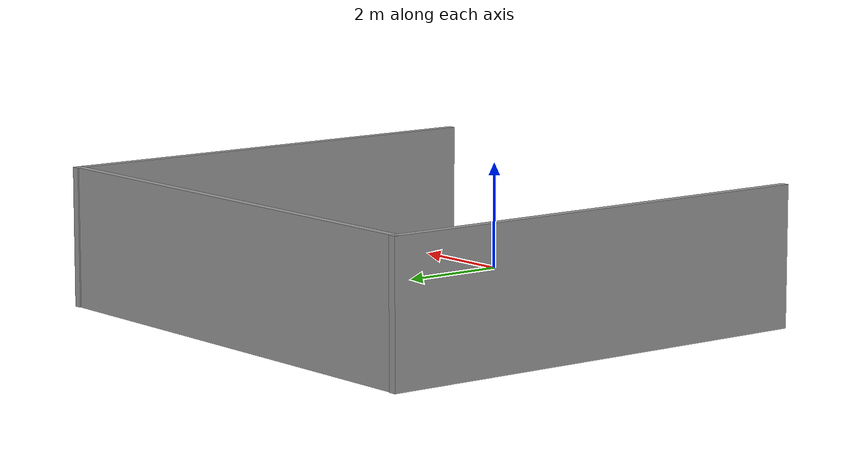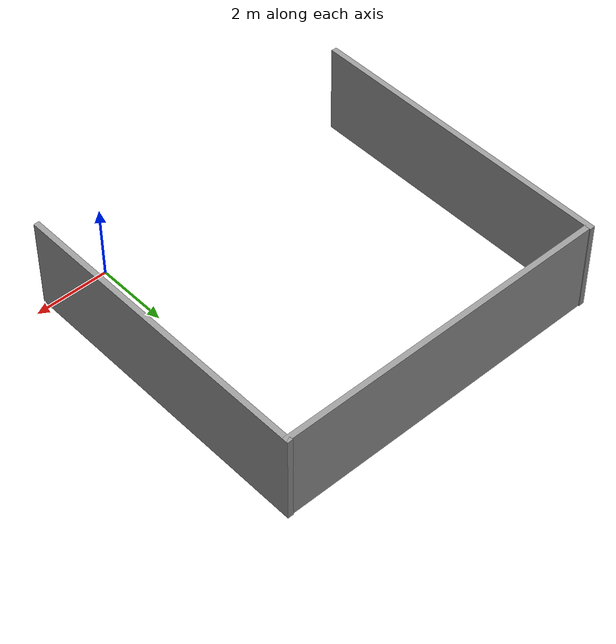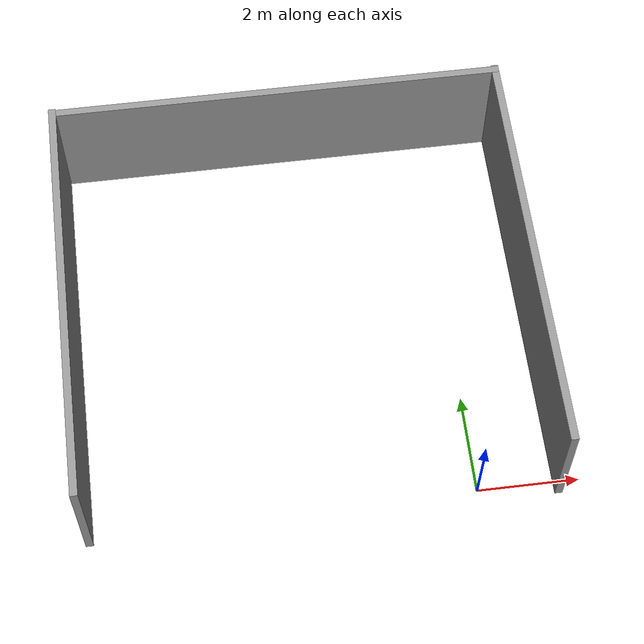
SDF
<?xml version='1.0'?>
<sdf version='1.6'>
  <model name='building_template_model'>
    <pose frame=''>-2.98967 4.02339 0 0 -0 0</pose>
    <link name='Wall_0'>
      <collision name='Wall_0_Collision'>
        <geometry>
          <box>
            <size>8.48924 0.15 2.5</size>
          </box>
        </geometry>
        <pose frame=''>0 0 1.25 0 -0 0</pose>
      </collision>
      <visual name='Wall_0_Visual'>
        <pose frame=''>0 0 1.25 0 -0 0</pose>
        <geometry>
          <box>
            <size>8.48924 0.15 2.5</size>
          </box>
        </geometry>
        <material>
          <script>
            <uri>file://media/materials/scripts/gazebo.material</uri>
            <name>Gazebo/Grey</name>
          </script>
          <ambient>1 1 1 1</ambient>
        </material>
        <meta>
          <layer>0</layer>
        </meta>
      </visual>
      <pose frame=''>-4.55 0.007581 0 0 -0 1.5708</pose>
    </link>
    <link name='Wall_1'>
      <collision name='Wall_1_Collision'>
        <geometry>
          <box>
            <size>9.25 0.15 2.5</size>
          </box>
        </geometry>
        <pose frame=''>0 0 1.25 0 -0 0</pose>
      </collision>
      <visual name='Wall_1_Visual'>
        <pose frame=''>0 0 1.25 0 -0 0</pose>
        <geometry>
          <box>
            <size>9.25 0.15 2.5</size>
          </box>
        </geometry>
        <material>
          <script>
            <uri>file://media/materials/scripts/gazebo.material</uri>
            <name>Gazebo/Grey</name>
          </script>
          <ambient>1 1 1 1</ambient>
        </material>
        <meta>
          <layer>0</layer>
        </meta>
      </visual>
      <pose frame=''>0 4.15427 0 0 -0 0</pose>
    </link>
    <link name='Wall_4'>
      <collision name='Wall_4_Collision'>
        <geometry>
          <box>
            <size>8.5044 0.15 2.5</size>
          </box>
        </geometry>
        <pose frame=''>0 0 1.25 0 -0 0</pose>
      </collision>
      <visual name='Wall_4_Visual'>
        <pose frame=''>0 0 1.25 0 -0 0</pose>
        <geometry>
          <box>
            <size>8.5044 0.15 2.5</size>
          </box>
        </geometry>
        <material>
          <script>
            <uri>file://media/materials/scripts/gazebo.material</uri>
            <name>Gazebo/Grey</name>
          </script>
          <ambient>1 1 1 1</ambient>
        </material>
        <meta>
          <layer>0</layer>
        </meta>
      </visual>
      <pose frame=''>4.55 -0 0 0 -0 -1.5708</pose>
    </link>
    <static>1</static>
  </model>
</sdf>
